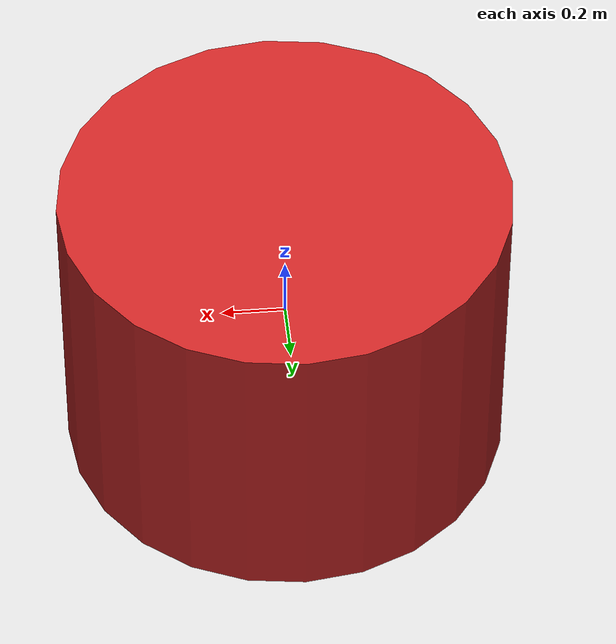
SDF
<?xml version='1.0'?>
<sdf version="1.4">
  <model name="env_exam_cylinder2">
    <static>true</static>
    <link name="link">

    <gravity>0</gravity>

      <inertial>
        <mass>1.0</mass>
        <inertia>
          <ixx>0.00036395833</ixx> <ixy>0.0</ixy> <ixz>0.0</ixz>
          <iyy>0.00036395833</iyy> <iyz>0.0</iyz> <izz>0.0006125</izz>
        </inertia>
      </inertial>
      <visual name="visual">
        <geometry>
          <cylinder>
            <radius>0.7</radius>
            <length>1.0</length>
          </cylinder>
        </geometry>
        <material>
          <script>
            <uri>file://media/materials/scripts/gazebo.material</uri>
            <name>Gazebo/Red</name>
          </script>
        </material>
      </visual>
      <collision name="collision">
        <geometry>
          <cylinder>
            <radius>0.7</radius>
            <length>1.0</length>
        </cylinder>
        </geometry>
        <surface>
          <friction>
            <ode>
              <mu>0.0</mu>
              <mu2>0.0</mu2>
            </ode>
          </friction>
        </surface>
      </collision>
    </link>

  </model>
</sdf>
